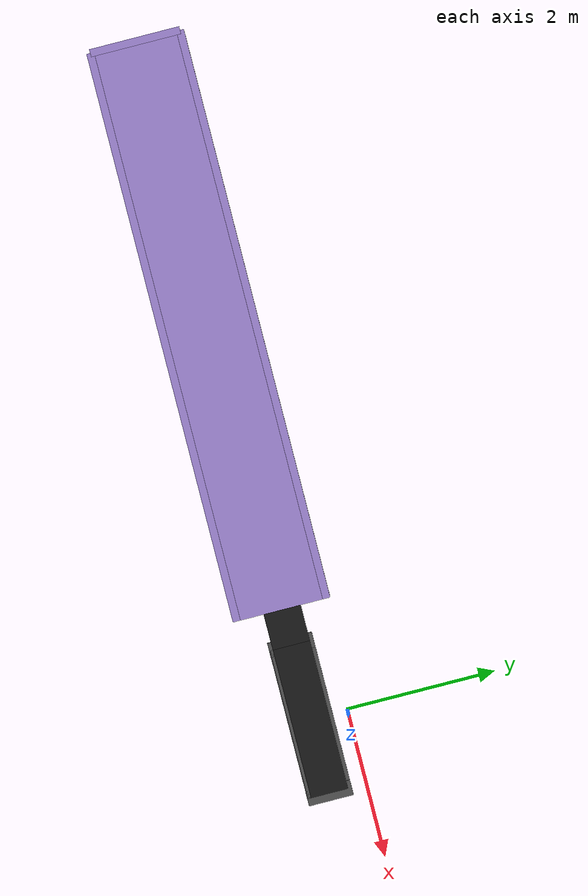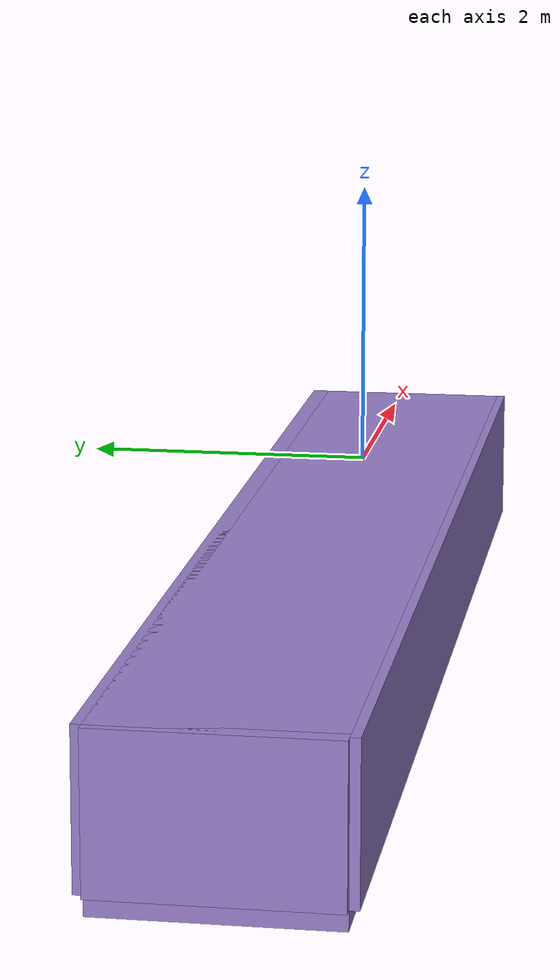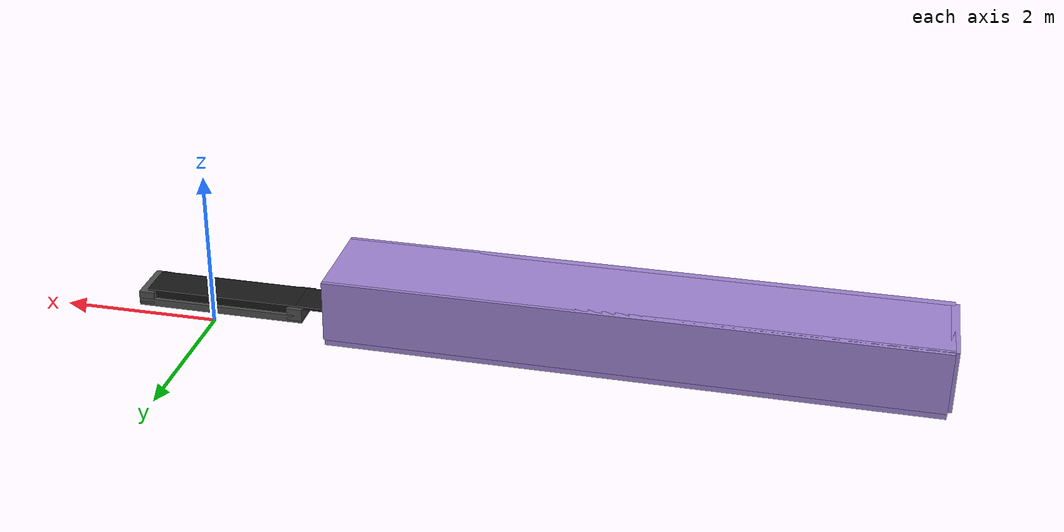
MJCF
<mujoco model="conveyor_with_warehouse">
    <compiler angle="radian" coordinate="local" inertiafromgeom="true" eulerseq="xyz" />
    <option timestep="0.0005" integrator="RK4" gravity="0 0 -9.81" iterations="100" tolerance="1e-10" />

    <asset>
        <material name="conveyor_mat" rgba="0.2 0.2 0.2 1" />
        <material name="ground_mat" rgba="0.9 0.9 0.9 1" />
        <material name="box_mat" rgba="0.8 0.4 0.2 1" />
        <material name="support_mat" rgba="0.3 0.3 0.3 1" />
        <material name="warehouse_mat" rgba="0.6 0.5 0.8 1" />
        <material name="warehouse_opening" rgba="0.2 0.2 0.2 1" />
        <texture name="moving_belt" type="2d" builtin="checker" rgb1="0.4 0.4 0.4" width="100" height="100" />
        <material name="belt_material" texture="moving_belt" texrepeat="50 2" rgba="0.2 0.2 0.2 1" />
    </asset>

    <worldbody>

        <!-- front view: positioned in front of the robot looking toward negative x (adjust as needed) -->
        <camera name="front_cam" pos="2.5 -0.4 0.8" xyaxes="0 1 0 0 0 1" />
        <!-- side view: positioned to the right side, looking toward robot center -->
        <camera name="side_cam" pos="0 -2.5 0.8" xyaxes="1 0 0 0 0 1" />
        <!-- top-down view: high above looking straight down -->
        <camera name="topdown_cam" pos="0 0 3.0" xyaxes="1 0 0 0 1 0" />

        <geom name="warehouse_floor" type="box" size="3.8 0.6 0.15" pos="-5.3 -0.5 0.05" material="warehouse_mat" condim="6" friction="0 1 1" />

        <geom name="warehouse_back" type="box" size="0.05 0.6 0.4" pos="-9.1 -0.5 0.4" material="warehouse_mat" condim="6" friction="1.0 0.1 0.01" />

        <geom name="warehouse_left" type="box" size="3.8 0.05 0.4" pos="-5.3 -1.1 0.4" material="warehouse_mat" condim="6" friction="1.0 0.1 0.01" />

        <geom name="warehouse_right" type="box" size="3.8 0.05 0.4" pos="-5.3 0.09999999999999998 0.4" material="warehouse_mat" condim="6" friction="1.0 0.1 0.01" />

        <geom name="warehouse_roof" type="box" size="3.8 0.6 0.05" pos="-5.3 -0.5 0.75" material="warehouse_mat" condim="6" friction="0 1 1" />

        <geom name="left_support" type="box" size="0.1 0.3 0.08" pos="-1 -0.5 0.1" material="support_mat" condim="6" friction="0 0.1 0.01" />
        <geom name="right_support" type="box" size="0.1 0.3 0.08" pos="1 -0.5 0.1" material="support_mat" condim="6" friction="0 0.1 0.01" />
        <geom name="frame_base" type="box" size="1.1 0.3 0.05" pos="0 -0.5 0.04" material="support_mat" condim="6" friction="0 0.1 0.01" />

        <geom name="belt_surface" type="box" size="1 0.25 0.08" pos="0 -0.5 0.12" material="belt_material" condim="6" friction="0 1 1" />

        <geom name="left_rail" type="box" size="1 0.02 0.05" pos="0 -0.77 0.13" material="support_mat" condim="6" friction="0 0.1 0.01" />
        <geom name="right_rail" type="box" size="1 0.02 0.05" pos="0 -0.73 0.13" material="support_mat" condim="6" friction="0 0.1 0.01" />

        <geom name="connection_bridge" type="box" size="0.25 0.25 0.02" pos="-1.25 -0.5 0.18" material="belt_material" condim="6" friction="0 1 1" />

        <light name="top_light" pos="0 0 4" dir="0 0 -1" diffuse="0.8 0.8 0.8" />
        <light name="side_light1" pos="3 3 3" dir="-1 -1 -1" diffuse="0.4 0.4 0.4" />
        <light name="side_light2" pos="-3 3 3" dir="1 -1 -1" diffuse="0.4 0.4 0.4" />
        <light name="warehouse_light" pos="-5.8 -0.5 1" dir="0 0 -1" diffuse="0.6 0.6 0.6" />
    </worldbody>
</mujoco>
